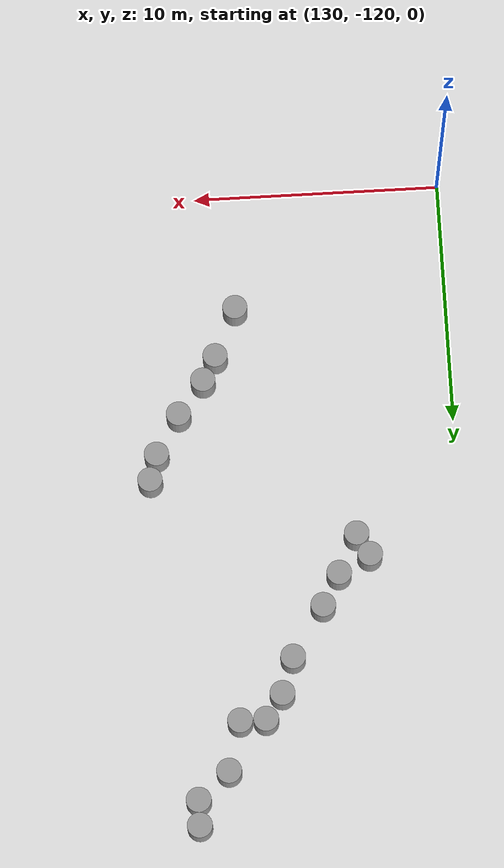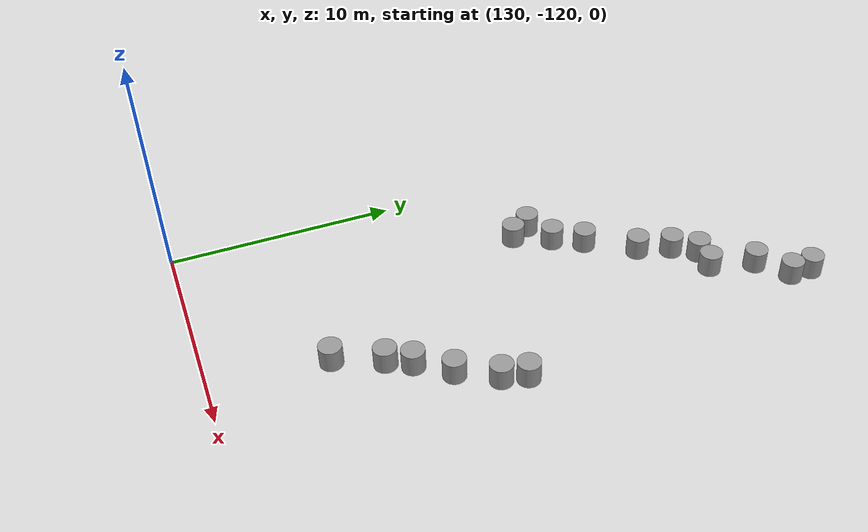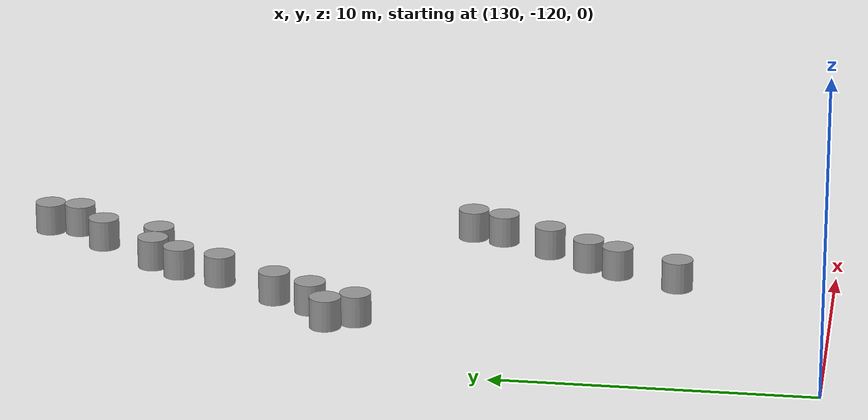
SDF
<sdf version="1.7">
 <world name="default">
  <model name="unit_cylinder_85_clone_244_clone_778">
   <pose>140.981 -93.9588 0.450144 -0.000334 -2e-06 -0.035425</pose>
   <link name="link">
    <inertial>
     <mass>1</mass>
     <inertia><ixx>0.145833</ixx><ixy>0</ixy><ixz>0</ixz><iyy>0.145833</iyy><iyz>0</iyz><izz>0.125</izz></inertia>
    </inertial>
    <collision name="collision">
     <geometry><cylinder><radius>0.5</radius><length>1</length></cylinder></geometry>
    </collision>
    <visual name="visual">
     <geometry><cylinder><radius>0.5</radius><length>1</length></cylinder></geometry>
     <material>
      <script><name>Gazebo/Grey</name><uri>file://media/materials/scripts/gazebo.material</uri></script>
     </material>
    </visual>
   </link>
  </model>
  <model name="unit_cylinder_85_clone_244_clone_779">
   <pose>140.981 -94.9588 0.450966 -0.000407 -0.001889 0.046353</pose>
   <link name="link">
    <inertial>
     <mass>1</mass>
     <inertia><ixx>0.145833</ixx><ixy>0</ixy><ixz>0</ixz><iyy>0.145833</iyy><iyz>0</iyz><izz>0.125</izz></inertia>
    </inertial>
    <collision name="collision">
     <geometry><cylinder><radius>0.5</radius><length>1</length></cylinder></geometry>
    </collision>
    <visual name="visual">
     <geometry><cylinder><radius>0.5</radius><length>1</length></cylinder></geometry>
     <material>
      <script><name>Gazebo/Grey</name><uri>file://media/materials/scripts/gazebo.material</uri></script>
     </material>
    </visual>
   </link>
  </model>
  <model name="unit_cylinder_85_clone_244_clone_780">
   <pose>139.741 -96.035 0.45 0 -0 0.000534</pose>
   <link name="link">
    <inertial>
     <mass>1</mass>
     <inertia><ixx>0.145833</ixx><ixy>0</ixy><ixz>0</ixz><iyy>0.145833</iyy><iyz>0</iyz><izz>0.125</izz></inertia>
    </inertial>
    <collision name="collision">
     <geometry><cylinder><radius>0.5</radius><length>1</length></cylinder></geometry>
    </collision>
    <visual name="visual">
     <geometry><cylinder><radius>0.5</radius><length>1</length></cylinder></geometry>
     <material>
      <script><name>Gazebo/Grey</name><uri>file://media/materials/scripts/gazebo.material</uri></script>
     </material>
    </visual>
   </link>
  </model>
  <model name="unit_cylinder_85_clone_244_clone_781">
   <pose>139.212 -97.9986 0.450964 -0.001055 -0.001616 0.004208</pose>
   <link name="link">
    <inertial>
     <mass>1</mass>
     <inertia><ixx>0.145833</ixx><ixy>0</ixy><ixz>0</ixz><iyy>0.145833</iyy><iyz>0</iyz><izz>0.125</izz></inertia>
    </inertial>
    <collision name="collision">
     <geometry><cylinder><radius>0.5</radius><length>1</length></cylinder></geometry>
    </collision>
    <visual name="visual">
     <geometry><cylinder><radius>0.5</radius><length>1</length></cylinder></geometry>
     <material>
      <script><name>Gazebo/Grey</name><uri>file://media/materials/scripts/gazebo.material</uri></script>
     </material>
    </visual>
   </link>
  </model>
  <model name="unit_cylinder_85_clone_244_clone_782">
   <pose>138.191 -98.008 0.449993 1e-06 -1e-06 -0.015864</pose>
   <link name="link">
    <inertial>
     <mass>1</mass>
     <inertia><ixx>0.145833</ixx><ixy>0</ixy><ixz>0</ixz><iyy>0.145833</iyy><iyz>0</iyz><izz>0.125</izz></inertia>
    </inertial>
    <collision name="collision">
     <geometry><cylinder><radius>0.5</radius><length>1</length></cylinder></geometry>
    </collision>
    <visual name="visual">
     <geometry><cylinder><radius>0.5</radius><length>1</length></cylinder></geometry>
     <material>
      <script><name>Gazebo/Grey</name><uri>file://media/materials/scripts/gazebo.material</uri></script>
     </material>
    </visual>
   </link>
  </model>
  <model name="unit_cylinder_85_clone_244_clone_783">
   <pose>137.499 -99 0.449997 4e-06 -2e-06 0.0005</pose>
   <link name="link">
    <inertial>
     <mass>1</mass>
     <inertia><ixx>0.145833</ixx><ixy>0</ixy><ixz>0</ixz><iyy>0.145833</iyy><iyz>0</iyz><izz>0.125</izz></inertia>
    </inertial>
    <collision name="collision">
     <geometry><cylinder><radius>0.5</radius><length>1</length></cylinder></geometry>
    </collision>
    <visual name="visual">
     <geometry><cylinder><radius>0.5</radius><length>1</length></cylinder></geometry>
     <material>
      <script><name>Gazebo/Grey</name><uri>file://media/materials/scripts/gazebo.material</uri></script>
     </material>
    </visual>
   </link>
  </model>
  <model name="unit_cylinder_85_clone_244_clone_784">
   <pose>137 -100.436 0.449991 2e-06 1e-06 0.00053</pose>
   <link name="link">
    <inertial>
     <mass>1</mass>
     <inertia><ixx>0.145833</ixx><ixy>0</ixy><ixz>0</ixz><iyy>0.145833</iyy><iyz>0</iyz><izz>0.125</izz></inertia>
    </inertial>
    <collision name="collision">
     <geometry><cylinder><radius>0.5</radius><length>1</length></cylinder></geometry>
    </collision>
    <visual name="visual">
     <geometry><cylinder><radius>0.5</radius><length>1</length></cylinder></geometry>
     <material>
      <script><name>Gazebo/Grey</name><uri>file://media/materials/scripts/gazebo.material</uri></script>
     </material>
    </visual>
   </link>
  </model>
  <model name="unit_cylinder_85_clone_244_clone_791">
   <pose>142.306 -107.952 0.451265 0.000207 0.000347 0.000476</pose>
   <link name="link">
    <inertial>
     <mass>1</mass>
     <inertia><ixx>0.145833</ixx><ixy>0</ixy><ixz>0</ixz><iyy>0.145833</iyy><iyz>0</iyz><izz>0.125</izz></inertia>
    </inertial>
    <collision name="collision">
     <geometry><cylinder><radius>0.5</radius><length>1</length></cylinder></geometry>
    </collision>
    <visual name="visual">
     <geometry><cylinder><radius>0.5</radius><length>1</length></cylinder></geometry>
     <material>
      <script><name>Gazebo/Grey</name><uri>file://media/materials/scripts/gazebo.material</uri></script>
     </material>
    </visual>
   </link>
  </model>
  <model name="unit_cylinder_85_clone_244_clone_792">
   <pose>142 -109 0.451132 0.000216 0.000364 0.000501</pose>
   <link name="link">
    <inertial>
     <mass>1</mass>
     <inertia><ixx>0.145833</ixx><ixy>0</ixy><ixz>0</ixz><iyy>0.145833</iyy><iyz>0</iyz><izz>0.125</izz></inertia>
    </inertial>
    <collision name="collision">
     <geometry><cylinder><radius>0.5</radius><length>1</length></cylinder></geometry>
    </collision>
    <visual name="visual">
     <geometry><cylinder><radius>0.5</radius><length>1</length></cylinder></geometry>
     <material>
      <script><name>Gazebo/Grey</name><uri>file://media/materials/scripts/gazebo.material</uri></script>
     </material>
    </visual>
   </link>
  </model>
  <model name="unit_cylinder_85_clone_244_clone_793">
   <pose>135.697 -102.455 0.450005 9e-06 4e-06 0.000562</pose>
   <link name="link">
    <inertial>
     <mass>1</mass>
     <inertia><ixx>0.145833</ixx><ixy>0</ixy><ixz>0</ixz><iyy>0.145833</iyy><iyz>0</iyz><izz>0.125</izz></inertia>
    </inertial>
    <collision name="collision">
     <geometry><cylinder><radius>0.5</radius><length>1</length></cylinder></geometry>
    </collision>
    <visual name="visual">
     <geometry><cylinder><radius>0.5</radius><length>1</length></cylinder></geometry>
     <material>
      <script><name>Gazebo/Grey</name><uri>file://media/materials/scripts/gazebo.material</uri></script>
     </material>
    </visual>
   </link>
  </model>
  <model name="unit_cylinder_85_clone_244_clone_794">
   <pose>134.991 -103.727 0.450006 -7e-06 -8e-06 -0.00231</pose>
   <link name="link">
    <inertial>
     <mass>1</mass>
     <inertia><ixx>0.145833</ixx><ixy>0</ixy><ixz>0</ixz><iyy>0.145833</iyy><iyz>0</iyz><izz>0.125</izz></inertia>
    </inertial>
    <collision name="collision">
     <geometry><cylinder><radius>0.5</radius><length>1</length></cylinder></geometry>
    </collision>
    <visual name="visual">
     <geometry><cylinder><radius>0.5</radius><length>1</length></cylinder></geometry>
     <material>
      <script><name>Gazebo/Grey</name><uri>file://media/materials/scripts/gazebo.material</uri></script>
     </material>
    </visual>
   </link>
  </model>
  <model name="unit_cylinder_85_clone_244_clone_795">
   <pose>133.72 -104.425 0.450329 -0.000621 -0.000363 -0.017418</pose>
   <link name="link">
    <inertial>
     <mass>1</mass>
     <inertia><ixx>0.145833</ixx><ixy>0</ixy><ixz>0</ixz><iyy>0.145833</iyy><iyz>0</iyz><izz>0.125</izz></inertia>
    </inertial>
    <collision name="collision">
     <geometry><cylinder><radius>0.5</radius><length>1</length></cylinder></geometry>
    </collision>
    <visual name="visual">
     <geometry><cylinder><radius>0.5</radius><length>1</length></cylinder></geometry>
     <material>
      <script><name>Gazebo/Grey</name><uri>file://media/materials/scripts/gazebo.material</uri></script>
     </material>
    </visual>
   </link>
  </model>
  <model name="unit_cylinder_85_clone_244_clone_796">
   <pose>134.205 -105.299 0.450949 -0.000166 -0.001015 -0.081981</pose>
   <link name="link">
    <inertial>
     <mass>1</mass>
     <inertia><ixx>0.145833</ixx><ixy>0</ixy><ixz>0</ixz><iyy>0.145833</iyy><iyz>0</iyz><izz>0.125</izz></inertia>
    </inertial>
    <collision name="collision">
     <geometry><cylinder><radius>0.5</radius><length>1</length></cylinder></geometry>
    </collision>
    <visual name="visual">
     <geometry><cylinder><radius>0.5</radius><length>1</length></cylinder></geometry>
     <material>
      <script><name>Gazebo/Grey</name><uri>file://media/materials/scripts/gazebo.material</uri></script>
     </material>
    </visual>
   </link>
  </model>
  <model name="unit_cylinder_85_clone_244_clone_800">
   <pose>141.043 -110.628 0.451126 0.000222 0.00036 0.000501</pose>
   <link name="link">
    <inertial>
     <mass>1</mass>
     <inertia><ixx>0.145833</ixx><ixy>0</ixy><ixz>0</ixz><iyy>0.145833</iyy><iyz>0</iyz><izz>0.125</izz></inertia>
    </inertial>
    <collision name="collision">
     <geometry><cylinder><radius>0.5</radius><length>1</length></cylinder></geometry>
    </collision>
    <visual name="visual">
     <geometry><cylinder><radius>0.5</radius><length>1</length></cylinder></geometry>
     <material>
      <script><name>Gazebo/Grey</name><uri>file://media/materials/scripts/gazebo.material</uri></script>
     </material>
    </visual>
   </link>
  </model>
  <model name="unit_cylinder_85_clone_244_clone_801">
   <pose>140 -112 0.451212 0.000216 0.000374 0.000487</pose>
   <link name="link">
    <inertial>
     <mass>1</mass>
     <inertia><ixx>0.145833</ixx><ixy>0</ixy><ixz>0</ixz><iyy>0.145833</iyy><iyz>0</iyz><izz>0.125</izz></inertia>
    </inertial>
    <collision name="collision">
     <geometry><cylinder><radius>0.5</radius><length>1</length></cylinder></geometry>
    </collision>
    <visual name="visual">
     <geometry><cylinder><radius>0.5</radius><length>1</length></cylinder></geometry>
     <material>
      <script><name>Gazebo/Grey</name><uri>file://media/materials/scripts/gazebo.material</uri></script>
     </material>
    </visual>
   </link>
  </model>
  <model name="unit_cylinder_85_clone_244_clone_802">
   <pose>139.459 -113 0.451193 0.000232 0.000365 0.000482</pose>
   <link name="link">
    <inertial>
     <mass>1</mass>
     <inertia><ixx>0.145833</ixx><ixy>0</ixy><ixz>0</ixz><iyy>0.145833</iyy><iyz>0</iyz><izz>0.125</izz></inertia>
    </inertial>
    <collision name="collision">
     <geometry><cylinder><radius>0.5</radius><length>1</length></cylinder></geometry>
    </collision>
    <visual name="visual">
     <geometry><cylinder><radius>0.5</radius><length>1</length></cylinder></geometry>
     <material>
      <script><name>Gazebo/Grey</name><uri>file://media/materials/scripts/gazebo.material</uri></script>
     </material>
    </visual>
   </link>
  </model>
  <model name="unit_cylinder_85_clone_244_clone_803">
   <pose>138.558 -115 0.451071 0.00022 0.000368 0.000499</pose>
   <link name="link">
    <inertial>
     <mass>1</mass>
     <inertia><ixx>0.145833</ixx><ixy>0</ixy><ixz>0</ixz><iyy>0.145833</iyy><iyz>0</iyz><izz>0.125</izz></inertia>
    </inertial>
    <collision name="collision">
     <geometry><cylinder><radius>0.5</radius><length>1</length></cylinder></geometry>
    </collision>
    <visual name="visual">
     <geometry><cylinder><radius>0.5</radius><length>1</length></cylinder></geometry>
     <material>
      <script><name>Gazebo/Grey</name><uri>file://media/materials/scripts/gazebo.material</uri></script>
     </material>
    </visual>
   </link>
  </model>
 </world>
</sdf>
